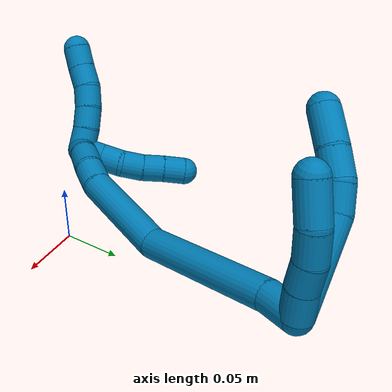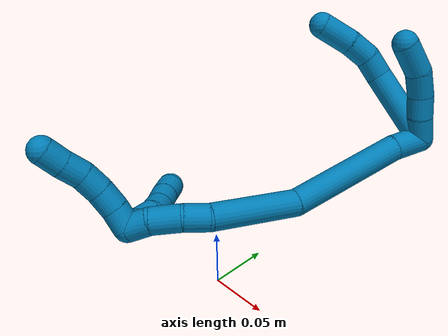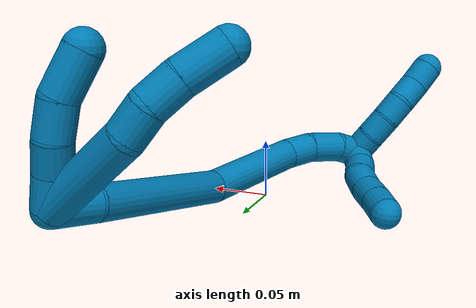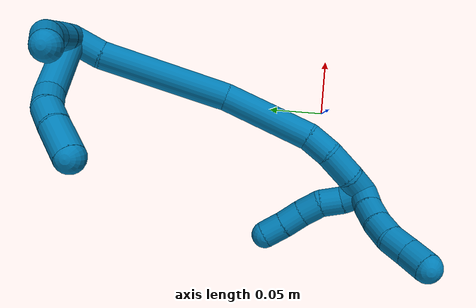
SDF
<sdf version="1.7">
 <world name="default">
  <model name="9">
   <static>0</static>
   <link name="9">
    <collision name="collision-cylinder-e_1_2_8">
     <pose>-0.023129 -0.001311 0.028316 0.046261 -0.684394 -0.016481</pose>
     <geometry><cylinder><radius>0.0125</radius><length>0.07317</length></cylinder></geometry>
     <surface>
      <friction><ode><mu>1.16</mu><mu2>1.16</mu2><slip1>0</slip1><slip2>0</slip2></ode></friction>
      <contact><ode><kp>1e+06</kp><kd>1</kd><max_vel>0</max_vel><min_depth>0.001</min_depth></ode></contact>
     </surface>
    </collision>
    <visual name="visual-cylinder-e_1_2_8">
     <pose>-0.023129 -0.001311 0.028316 0.046261 -0.684394 -0.016481</pose>
     <geometry><cylinder><radius>0.0125</radius><length>0.07317</length></cylinder></geometry>
     <material><ambient>0 0.490196 0.709804 1</ambient></material>
    </visual>
    <collision name="collision-cylinder-e_2_8_9">
     <pose>-0.050851 -0.005286 0.066177 0.272198 -0.433998 -0.060367</pose>
     <geometry><cylinder><radius>0.0125</radius><length>0.021846</length></cylinder></geometry>
     <surface>
      <friction><ode><mu>1.16</mu><mu2>1.16</mu2><slip1>0</slip1><slip2>0</slip2></ode></friction>
      <contact><ode><kp>1e+06</kp><kd>1</kd><max_vel>0</max_vel><min_depth>0.001</min_depth></ode></contact>
     </surface>
    </collision>
    <visual name="visual-cylinder-e_2_8_9">
     <pose>-0.050851 -0.005286 0.066177 0.272198 -0.433998 -0.060367</pose>
     <geometry><cylinder><radius>0.0125</radius><length>0.021846</length></cylinder></geometry>
     <material><ambient>0 0.490196 0.709804 1</ambient></material>
    </visual>
    <collision name="collision-cylinder-e_3_9_10">
     <pose>-0.060948 -0.01393 0.083855 0.633978 -0.499183 -0.166857</pose>
     <geometry><cylinder><radius>0.0125</radius><length>0.022994</length></cylinder></geometry>
     <surface>
      <friction><ode><mu>1.16</mu><mu2>1.16</mu2><slip1>0</slip1><slip2>0</slip2></ode></friction>
      <contact><ode><kp>1e+06</kp><kd>1</kd><max_vel>0</max_vel><min_depth>0.001</min_depth></ode></contact>
     </surface>
    </collision>
    <visual name="visual-cylinder-e_3_9_10">
     <pose>-0.060948 -0.01393 0.083855 0.633978 -0.499183 -0.166857</pose>
     <geometry><cylinder><radius>0.0125</radius><length>0.022994</length></cylinder></geometry>
     <material><ambient>0 0.490196 0.709804 1</ambient></material>
    </visual>
    <collision name="collision-cylinder-e_4_10_6">
     <pose>-0.075382 -0.029021 0.101636 0.756802 -0.592317 -0.241437</pose>
     <geometry><cylinder><radius>0.0125</radius><length>0.031989</length></cylinder></geometry>
     <surface>
      <friction><ode><mu>1.16</mu><mu2>1.16</mu2><slip1>0</slip1><slip2>0</slip2></ode></friction>
      <contact><ode><kp>1e+06</kp><kd>1</kd><max_vel>0</max_vel><min_depth>0.001</min_depth></ode></contact>
     </surface>
    </collision>
    <visual name="visual-cylinder-e_4_10_6">
     <pose>-0.075382 -0.029021 0.101636 0.756802 -0.592317 -0.241437</pose>
     <geometry><cylinder><radius>0.0125</radius><length>0.031989</length></cylinder></geometry>
     <material><ambient>0 0.490196 0.709804 1</ambient></material>
    </visual>
    <collision name="collision-cylinder-e_1_2_11">
     <pose>-5.9e-05 -9.4e-05 0.011552 0.008116 -0.005114 -2.1e-05</pose>
     <geometry><cylinder><radius>0.0125</radius><length>0.023104</length></cylinder></geometry>
     <surface>
      <friction><ode><mu>1.16</mu><mu2>1.16</mu2><slip1>0</slip1><slip2>0</slip2></ode></friction>
      <contact><ode><kp>1e+06</kp><kd>1</kd><max_vel>0</max_vel><min_depth>0.001</min_depth></ode></contact>
     </surface>
    </collision>
    <visual name="visual-cylinder-e_1_2_11">
     <pose>-5.9e-05 -9.4e-05 0.011552 0.008116 -0.005114 -2.1e-05</pose>
     <geometry><cylinder><radius>0.0125</radius><length>0.023104</length></cylinder></geometry>
     <material><ambient>0 0.490196 0.709804 1</ambient></material>
    </visual>
    <collision name="collision-cylinder-e_2_11_12">
     <pose>-0.000408 0.000787 0.033741 -0.091384 -0.027141 0.001241</pose>
     <geometry><cylinder><radius>0.0125</radius><length>0.021373</length></cylinder></geometry>
     <surface>
      <friction><ode><mu>1.16</mu><mu2>1.16</mu2><slip1>0</slip1><slip2>0</slip2></ode></friction>
      <contact><ode><kp>1e+06</kp><kd>1</kd><max_vel>0</max_vel><min_depth>0.001</min_depth></ode></contact>
     </surface>
    </collision>
    <visual name="visual-cylinder-e_2_11_12">
     <pose>-0.000408 0.000787 0.033741 -0.091384 -0.027141 0.001241</pose>
     <geometry><cylinder><radius>0.0125</radius><length>0.021373</length></cylinder></geometry>
     <material><ambient>0 0.490196 0.709804 1</ambient></material>
    </visual>
    <collision name="collision-cylinder-e_3_12_13">
     <pose>-0.001009 0.000486 0.056463 0.105242 -0.025544 -0.001345</pose>
     <geometry><cylinder><radius>0.0125</radius><length>0.02431</length></cylinder></geometry>
     <surface>
      <friction><ode><mu>1.16</mu><mu2>1.16</mu2><slip1>0</slip1><slip2>0</slip2></ode></friction>
      <contact><ode><kp>1e+06</kp><kd>1</kd><max_vel>0</max_vel><min_depth>0.001</min_depth></ode></contact>
     </surface>
    </collision>
    <visual name="visual-cylinder-e_3_12_13">
     <pose>-0.001009 0.000486 0.056463 0.105242 -0.025544 -0.001345</pose>
     <geometry><cylinder><radius>0.0125</radius><length>0.02431</length></cylinder></geometry>
     <material><ambient>0 0.490196 0.709804 1</ambient></material>
    </visual>
    <collision name="collision-cylinder-e_4_13_5">
     <pose>-0.004934 -0.005722 0.082905 0.330852 -0.233775 -0.039203</pose>
     <geometry><cylinder><radius>0.0125</radius><length>0.031213</length></cylinder></geometry>
     <surface>
      <friction><ode><mu>1.16</mu><mu2>1.16</mu2><slip1>0</slip1><slip2>0</slip2></ode></friction>
      <contact><ode><kp>1e+06</kp><kd>1</kd><max_vel>0</max_vel><min_depth>0.001</min_depth></ode></contact>
     </surface>
    </collision>
    <visual name="visual-cylinder-e_4_13_5">
     <pose>-0.004934 -0.005722 0.082905 0.330852 -0.233775 -0.039203</pose>
     <geometry><cylinder><radius>0.0125</radius><length>0.031213</length></cylinder></geometry>
     <material><ambient>0 0.490196 0.709804 1</ambient></material>
    </visual>
    <collision name="collision-cylinder-e_1_2_14">
     <pose>-0.005616 -0.013367 -0.001244 1.66362 -0.396194 -0.433643</pose>
     <geometry><cylinder><radius>0.0125</radius><length>0.029104</length></cylinder></geometry>
     <surface>
      <friction><ode><mu>1.16</mu><mu2>1.16</mu2><slip1>0</slip1><slip2>0</slip2></ode></friction>
      <contact><ode><kp>1e+06</kp><kd>1</kd><max_vel>0</max_vel><min_depth>0.001</min_depth></ode></contact>
     </surface>
    </collision>
    <visual name="visual-cylinder-e_1_2_14">
     <pose>-0.005616 -0.013367 -0.001244 1.66362 -0.396194 -0.433643</pose>
     <geometry><cylinder><radius>0.0125</radius><length>0.029104</length></cylinder></geometry>
     <material><ambient>0 0.490196 0.709804 1</ambient></material>
    </visual>
    <collision name="collision-cylinder-e_2_14_15">
     <pose>-0.023287 -0.082694 -0.011314 1.72722 -0.209673 -0.245001</pose>
     <geometry><cylinder><radius>0.0125</radius><length>0.11584</length></cylinder></geometry>
     <surface>
      <friction><ode><mu>1.16</mu><mu2>1.16</mu2><slip1>0</slip1><slip2>0</slip2></ode></friction>
      <contact><ode><kp>1e+06</kp><kd>1</kd><max_vel>0</max_vel><min_depth>0.001</min_depth></ode></contact>
     </surface>
    </collision>
    <visual name="visual-cylinder-e_2_14_15">
     <pose>-0.023287 -0.082694 -0.011314 1.72722 -0.209673 -0.245001</pose>
     <geometry><cylinder><radius>0.0125</radius><length>0.11584</length></cylinder></geometry>
     <material><ambient>0 0.490196 0.709804 1</ambient></material>
    </visual>
    <collision name="collision-cylinder-e_3_15_16">
     <pose>-0.048135 -0.177587 -0.013872 1.41118 -0.313695 -0.267834</pose>
     <geometry><cylinder><radius>0.0125</radius><length>0.082915</length></cylinder></geometry>
     <surface>
      <friction><ode><mu>1.16</mu><mu2>1.16</mu2><slip1>0</slip1><slip2>0</slip2></ode></friction>
      <contact><ode><kp>1e+06</kp><kd>1</kd><max_vel>0</max_vel><min_depth>0.001</min_depth></ode></contact>
     </surface>
    </collision>
    <visual name="visual-cylinder-e_3_15_16">
     <pose>-0.048135 -0.177587 -0.013872 1.41118 -0.313695 -0.267834</pose>
     <geometry><cylinder><radius>0.0125</radius><length>0.082915</length></cylinder></geometry>
     <material><ambient>0 0.490196 0.709804 1</ambient></material>
    </visual>
    <collision name="collision-cylinder-e_4_16_17">
     <pose>-0.067167 -0.226199 -0.005469 1.35375 -0.56177 -0.455596</pose>
     <geometry><cylinder><radius>0.0125</radius><length>0.023423</length></cylinder></geometry>
     <surface>
      <friction><ode><mu>1.16</mu><mu2>1.16</mu2><slip1>0</slip1><slip2>0</slip2></ode></friction>
      <contact><ode><kp>1e+06</kp><kd>1</kd><max_vel>0</max_vel><min_depth>0.001</min_depth></ode></contact>
     </surface>
    </collision>
    <visual name="visual-cylinder-e_4_16_17">
     <pose>-0.067167 -0.226199 -0.005469 1.35375 -0.56177 -0.455596</pose>
     <geometry><cylinder><radius>0.0125</radius><length>0.023423</length></cylinder></geometry>
     <material><ambient>0 0.490196 0.709804 1</ambient></material>
    </visual>
    <collision name="collision-cylinder-e_5_17_18">
     <pose>-0.08254 -0.2465 -0.003262 1.56391 -0.710278 -0.705797</pose>
     <geometry><cylinder><radius>0.0125</radius><length>0.02802</length></cylinder></geometry>
     <surface>
      <friction><ode><mu>1.16</mu><mu2>1.16</mu2><slip1>0</slip1><slip2>0</slip2></ode></friction>
      <contact><ode><kp>1e+06</kp><kd>1</kd><max_vel>0</max_vel><min_depth>0.001</min_depth></ode></contact>
     </surface>
    </collision>
    <visual name="visual-cylinder-e_5_17_18">
     <pose>-0.08254 -0.2465 -0.003262 1.56391 -0.710278 -0.705797</pose>
     <geometry><cylinder><radius>0.0125</radius><length>0.02802</length></cylinder></geometry>
     <material><ambient>0 0.490196 0.709804 1</ambient></material>
    </visual>
    <collision name="collision-cylinder-e_6_18_1">
     <pose>-0.09853 -0.264421 -0.005801 1.91451 -0.723997 -0.986782</pose>
     <geometry><cylinder><radius>0.0125</radius><length>0.020698</length></cylinder></geometry>
     <surface>
      <friction><ode><mu>1.16</mu><mu2>1.16</mu2><slip1>0</slip1><slip2>0</slip2></ode></friction>
      <contact><ode><kp>1e+06</kp><kd>1</kd><max_vel>0</max_vel><min_depth>0.001</min_depth></ode></contact>
     </surface>
    </collision>
    <visual name="visual-cylinder-e_6_18_1">
     <pose>-0.09853 -0.264421 -0.005801 1.91451 -0.723997 -0.986782</pose>
     <geometry><cylinder><radius>0.0125</radius><length>0.020698</length></cylinder></geometry>
     <material><ambient>0 0.490196 0.709804 1</ambient></material>
    </visual>
    <collision name="collision-cylinder-e_1_1_19">
     <pose>-0.110414 -0.263515 -0.011129 -1.89036 -0.526885 0.714631</pose>
     <geometry><cylinder><radius>0.0125</radius><length>0.02</length></cylinder></geometry>
     <surface>
      <friction><ode><mu>1.16</mu><mu2>1.16</mu2><slip1>0</slip1><slip2>0</slip2></ode></friction>
      <contact><ode><kp>1e+06</kp><kd>1</kd><max_vel>0</max_vel><min_depth>0.001</min_depth></ode></contact>
     </surface>
    </collision>
    <visual name="visual-cylinder-e_1_1_19">
     <pose>-0.110414 -0.263515 -0.011129 -1.89036 -0.526885 0.714631</pose>
     <geometry><cylinder><radius>0.0125</radius><length>0.02</length></cylinder></geometry>
     <material><ambient>0 0.490196 0.709804 1</ambient></material>
    </visual>
    <collision name="collision-cylinder-e_2_19_20">
     <pose>-0.118405 -0.245838 -0.015086 -1.70108 -0.300762 0.341977</pose>
     <geometry><cylinder><radius>0.0125</radius><length>0.02</length></cylinder></geometry>
     <surface>
      <friction><ode><mu>1.16</mu><mu2>1.16</mu2><slip1>0</slip1><slip2>0</slip2></ode></friction>
      <contact><ode><kp>1e+06</kp><kd>1</kd><max_vel>0</max_vel><min_depth>0.001</min_depth></ode></contact>
     </surface>
    </collision>
    <visual name="visual-cylinder-e_2_19_20">
     <pose>-0.118405 -0.245838 -0.015086 -1.70108 -0.300762 0.341977</pose>
     <geometry><cylinder><radius>0.0125</radius><length>0.02</length></cylinder></geometry>
     <material><ambient>0 0.490196 0.709804 1</ambient></material>
    </visual>
    <collision name="collision-cylinder-e_3_20_21">
     <pose>-0.127358 -0.228536 -0.017993 -1.78048 -0.642314 0.779773</pose>
     <geometry><cylinder><radius>0.0125</radius><length>0.02</length></cylinder></geometry>
     <surface>
      <friction><ode><mu>1.16</mu><mu2>1.16</mu2><slip1>0</slip1><slip2>0</slip2></ode></friction>
      <contact><ode><kp>1e+06</kp><kd>1</kd><max_vel>0</max_vel><min_depth>0.001</min_depth></ode></contact>
     </surface>
    </collision>
    <visual name="visual-cylinder-e_3_20_21">
     <pose>-0.127358 -0.228536 -0.017993 -1.78048 -0.642314 0.779773</pose>
     <geometry><cylinder><radius>0.0125</radius><length>0.02</length></cylinder></geometry>
     <material><ambient>0 0.490196 0.709804 1</ambient></material>
    </visual>
    <collision name="collision-cylinder-e_4_21_22">
     <pose>-0.139877 -0.213141 -0.020072 -1.62527 -0.711368 0.747685</pose>
     <geometry><cylinder><radius>0.0125</radius><length>0.02</length></cylinder></geometry>
     <surface>
      <friction><ode><mu>1.16</mu><mu2>1.16</mu2><slip1>0</slip1><slip2>0</slip2></ode></friction>
      <contact><ode><kp>1e+06</kp><kd>1</kd><max_vel>0</max_vel><min_depth>0.001</min_depth></ode></contact>
     </surface>
    </collision>
    <visual name="visual-cylinder-e_4_21_22">
     <pose>-0.139877 -0.213141 -0.020072 -1.62527 -0.711368 0.747685</pose>
     <geometry><cylinder><radius>0.0125</radius><length>0.02</length></cylinder></geometry>
     <material><ambient>0 0.490196 0.709804 1</ambient></material>
    </visual>
    <collision name="collision-cylinder-e_5_22_4">
     <pose>-0.152375 -0.197577 -0.02108 -1.64508 -0.639664 0.685384</pose>
     <geometry><cylinder><radius>0.0125</radius><length>0.02</length></cylinder></geometry>
     <surface>
      <friction><ode><mu>1.16</mu><mu2>1.16</mu2><slip1>0</slip1><slip2>0</slip2></ode></friction>
      <contact><ode><kp>1e+06</kp><kd>1</kd><max_vel>0</max_vel><min_depth>0.001</min_depth></ode></contact>
     </surface>
    </collision>
    <visual name="visual-cylinder-e_5_22_4">
     <pose>-0.152375 -0.197577 -0.02108 -1.64508 -0.639664 0.685384</pose>
     <geometry><cylinder><radius>0.0125</radius><length>0.02</length></cylinder></geometry>
     <material><ambient>0 0.490196 0.709804 1</ambient></material>
    </visual>
    <collision name="collision-cylinder-e_1_1_23">
     <pose>-0.110167 -0.273186 0.000245 0.167583 -0.49861 -0.042761</pose>
     <geometry><cylinder><radius>0.0125</radius><length>0.02</length></cylinder></geometry>
     <surface>
      <friction><ode><mu>1.16</mu><mu2>1.16</mu2><slip1>0</slip1><slip2>0</slip2></ode></friction>
      <contact><ode><kp>1e+06</kp><kd>1</kd><max_vel>0</max_vel><min_depth>0.001</min_depth></ode></contact>
     </surface>
    </collision>
    <visual name="visual-cylinder-e_1_1_23">
     <pose>-0.110167 -0.273186 0.000245 0.167583 -0.49861 -0.042761</pose>
     <geometry><cylinder><radius>0.0125</radius><length>0.02</length></cylinder></geometry>
     <material><ambient>0 0.490196 0.709804 1</ambient></material>
    </visual>
    <collision name="collision-cylinder-e_2_23_24">
     <pose>-0.119475 -0.277488 0.017359 0.323753 -0.469659 -0.0781</pose>
     <geometry><cylinder><radius>0.0125</radius><length>0.02</length></cylinder></geometry>
     <surface>
      <friction><ode><mu>1.16</mu><mu2>1.16</mu2><slip1>0</slip1><slip2>0</slip2></ode></friction>
      <contact><ode><kp>1e+06</kp><kd>1</kd><max_vel>0</max_vel><min_depth>0.001</min_depth></ode></contact>
     </surface>
    </collision>
    <visual name="visual-cylinder-e_2_23_24">
     <pose>-0.119475 -0.277488 0.017359 0.323753 -0.469659 -0.0781</pose>
     <geometry><cylinder><radius>0.0125</radius><length>0.02</length></cylinder></geometry>
     <material><ambient>0 0.490196 0.709804 1</ambient></material>
    </visual>
    <collision name="collision-cylinder-e_3_24_25">
     <pose>-0.127917 -0.284619 0.033951 0.485595 -0.40233 -0.100931</pose>
     <geometry><cylinder><radius>0.0125</radius><length>0.02</length></cylinder></geometry>
     <surface>
      <friction><ode><mu>1.16</mu><mu2>1.16</mu2><slip1>0</slip1><slip2>0</slip2></ode></friction>
      <contact><ode><kp>1e+06</kp><kd>1</kd><max_vel>0</max_vel><min_depth>0.001</min_depth></ode></contact>
     </surface>
    </collision>
    <visual name="visual-cylinder-e_3_24_25">
     <pose>-0.127917 -0.284619 0.033951 0.485595 -0.40233 -0.100931</pose>
     <geometry><cylinder><radius>0.0125</radius><length>0.02</length></cylinder></geometry>
     <material><ambient>0 0.490196 0.709804 1</ambient></material>
    </visual>
    <collision name="collision-cylinder-e_4_25_26">
     <pose>-0.134993 -0.295264 0.049137 0.733382 -0.32158 -0.124421</pose>
     <geometry><cylinder><radius>0.0125</radius><length>0.02</length></cylinder></geometry>
     <surface>
      <friction><ode><mu>1.16</mu><mu2>1.16</mu2><slip1>0</slip1><slip2>0</slip2></ode></friction>
      <contact><ode><kp>1e+06</kp><kd>1</kd><max_vel>0</max_vel><min_depth>0.001</min_depth></ode></contact>
     </surface>
    </collision>
    <visual name="visual-cylinder-e_4_25_26">
     <pose>-0.134993 -0.295264 0.049137 0.733382 -0.32158 -0.124421</pose>
     <geometry><cylinder><radius>0.0125</radius><length>0.02</length></cylinder></geometry>
     <material><ambient>0 0.490196 0.709804 1</ambient></material>
    </visual>
    <collision name="collision-cylinder-e_5_26_3">
     <pose>-0.141149 -0.307367 0.063797 0.647097 -0.304187 -0.102707</pose>
     <geometry><cylinder><radius>0.0125</radius><length>0.02</length></cylinder></geometry>
     <surface>
      <friction><ode><mu>1.16</mu><mu2>1.16</mu2><slip1>0</slip1><slip2>0</slip2></ode></friction>
      <contact><ode><kp>1e+06</kp><kd>1</kd><max_vel>0</max_vel><min_depth>0.001</min_depth></ode></contact>
     </surface>
    </collision>
    <visual name="visual-cylinder-e_5_26_3">
     <pose>-0.141149 -0.307367 0.063797 0.647097 -0.304187 -0.102707</pose>
     <geometry><cylinder><radius>0.0125</radius><length>0.02</length></cylinder></geometry>
     <material><ambient>0 0.490196 0.709804 1</ambient></material>
    </visual>
    <collision name="collision-sphere-3">
     <pose>-0.144144 -0.313119 0.071409 0 -0 0</pose>
     <geometry><sphere><radius>0.0125</radius></sphere></geometry>
     <surface>
      <friction><ode><mu>1.16</mu><mu2>1.16</mu2><slip1>0</slip1><slip2>0</slip2></ode></friction>
      <contact><ode><kp>1e+06</kp><kd>1</kd><max_vel>0</max_vel><min_depth>0.001</min_depth></ode></contact>
     </surface>
    </collision>
    <visual name="visual-sphere-3">
     <pose>-0.144144 -0.313119 0.071409 0 -0 0</pose>
     <geometry><sphere><radius>0.0125</radius></sphere></geometry>
     <material><ambient>0 0.490196 0.709804 1</ambient></material>
    </visual>
    <collision name="collision-sphere-26">
     <pose>-0.138154 -0.301615 0.056185 0 -0 0</pose>
     <geometry><sphere><radius>0.0125</radius></sphere></geometry>
     <surface>
      <friction><ode><mu>1.16</mu><mu2>1.16</mu2><slip1>0</slip1><slip2>0</slip2></ode></friction>
      <contact><ode><kp>1e+06</kp><kd>1</kd><max_vel>0</max_vel><min_depth>0.001</min_depth></ode></contact>
     </surface>
    </collision>
    <visual name="visual-sphere-26">
     <pose>-0.138154 -0.301615 0.056185 0 -0 0</pose>
     <geometry><sphere><radius>0.0125</radius></sphere></geometry>
     <material><ambient>0 0.490196 0.709804 1</ambient></material>
    </visual>
    <collision name="collision-sphere-25">
     <pose>-0.131832 -0.288914 0.042088 0 -0 0</pose>
     <geometry><sphere><radius>0.0125</radius></sphere></geometry>
     <surface>
      <friction><ode><mu>1.16</mu><mu2>1.16</mu2><slip1>0</slip1><slip2>0</slip2></ode></friction>
      <contact><ode><kp>1e+06</kp><kd>1</kd><max_vel>0</max_vel><min_depth>0.001</min_depth></ode></contact>
     </surface>
    </collision>
    <visual name="visual-sphere-25">
     <pose>-0.131832 -0.288914 0.042088 0 -0 0</pose>
     <geometry><sphere><radius>0.0125</radius></sphere></geometry>
     <material><ambient>0 0.490196 0.709804 1</ambient></material>
    </visual>
    <collision name="collision-sphere-24">
     <pose>-0.124001 -0.280324 0.025813 0 -0 0</pose>
     <geometry><sphere><radius>0.0125</radius></sphere></geometry>
     <surface>
      <friction><ode><mu>1.16</mu><mu2>1.16</mu2><slip1>0</slip1><slip2>0</slip2></ode></friction>
      <contact><ode><kp>1e+06</kp><kd>1</kd><max_vel>0</max_vel><min_depth>0.001</min_depth></ode></contact>
     </surface>
    </collision>
    <visual name="visual-sphere-24">
     <pose>-0.124001 -0.280324 0.025813 0 -0 0</pose>
     <geometry><sphere><radius>0.0125</radius></sphere></geometry>
     <material><ambient>0 0.490196 0.709804 1</ambient></material>
    </visual>
    <collision name="collision-sphere-23">
     <pose>-0.114949 -0.274651 0.008905 0 -0 0</pose>
     <geometry><sphere><radius>0.0125</radius></sphere></geometry>
     <surface>
      <friction><ode><mu>1.16</mu><mu2>1.16</mu2><slip1>0</slip1><slip2>0</slip2></ode></friction>
      <contact><ode><kp>1e+06</kp><kd>1</kd><max_vel>0</max_vel><min_depth>0.001</min_depth></ode></contact>
     </surface>
    </collision>
    <visual name="visual-sphere-23">
     <pose>-0.114949 -0.274651 0.008905 0 -0 0</pose>
     <geometry><sphere><radius>0.0125</radius></sphere></geometry>
     <material><ambient>0 0.490196 0.709804 1</ambient></material>
    </visual>
    <collision name="collision-sphere-4">
     <pose>-0.158344 -0.189576 -0.021676 0 -0 0</pose>
     <geometry><sphere><radius>0.0125</radius></sphere></geometry>
     <surface>
      <friction><ode><mu>1.16</mu><mu2>1.16</mu2><slip1>0</slip1><slip2>0</slip2></ode></friction>
      <contact><ode><kp>1e+06</kp><kd>1</kd><max_vel>0</max_vel><min_depth>0.001</min_depth></ode></contact>
     </surface>
    </collision>
    <visual name="visual-sphere-4">
     <pose>-0.158344 -0.189576 -0.021676 0 -0 0</pose>
     <geometry><sphere><radius>0.0125</radius></sphere></geometry>
     <material><ambient>0 0.490196 0.709804 1</ambient></material>
    </visual>
    <collision name="collision-sphere-22">
     <pose>-0.146406 -0.205578 -0.020485 0 -0 0</pose>
     <geometry><sphere><radius>0.0125</radius></sphere></geometry>
     <surface>
      <friction><ode><mu>1.16</mu><mu2>1.16</mu2><slip1>0</slip1><slip2>0</slip2></ode></friction>
      <contact><ode><kp>1e+06</kp><kd>1</kd><max_vel>0</max_vel><min_depth>0.001</min_depth></ode></contact>
     </surface>
    </collision>
    <visual name="visual-sphere-22">
     <pose>-0.146406 -0.205578 -0.020485 0 -0 0</pose>
     <geometry><sphere><radius>0.0125</radius></sphere></geometry>
     <material><ambient>0 0.490196 0.709804 1</ambient></material>
    </visual>
    <collision name="collision-sphere-21">
     <pose>-0.133348 -0.220705 -0.01966 0 -0 0</pose>
     <geometry><sphere><radius>0.0125</radius></sphere></geometry>
     <surface>
      <friction><ode><mu>1.16</mu><mu2>1.16</mu2><slip1>0</slip1><slip2>0</slip2></ode></friction>
      <contact><ode><kp>1e+06</kp><kd>1</kd><max_vel>0</max_vel><min_depth>0.001</min_depth></ode></contact>
     </surface>
    </collision>
    <visual name="visual-sphere-21">
     <pose>-0.133348 -0.220705 -0.01966 0 -0 0</pose>
     <geometry><sphere><radius>0.0125</radius></sphere></geometry>
     <material><ambient>0 0.490196 0.709804 1</ambient></material>
    </visual>
    <collision name="collision-sphere-20">
     <pose>-0.121367 -0.236368 -0.016327 0 -0 0</pose>
     <geometry><sphere><radius>0.0125</radius></sphere></geometry>
     <surface>
      <friction><ode><mu>1.16</mu><mu2>1.16</mu2><slip1>0</slip1><slip2>0</slip2></ode></friction>
      <contact><ode><kp>1e+06</kp><kd>1</kd><max_vel>0</max_vel><min_depth>0.001</min_depth></ode></contact>
     </surface>
    </collision>
    <visual name="visual-sphere-20">
     <pose>-0.121367 -0.236368 -0.016327 0 -0 0</pose>
     <geometry><sphere><radius>0.0125</radius></sphere></geometry>
     <material><ambient>0 0.490196 0.709804 1</ambient></material>
    </visual>
    <collision name="collision-sphere-11">
     <pose>-0.000118 -0.000188 0.023103 0 -0 0</pose>
     <geometry><sphere><radius>0.0125</radius></sphere></geometry>
     <surface>
      <friction><ode><mu>1.16</mu><mu2>1.16</mu2><slip1>0</slip1><slip2>0</slip2></ode></friction>
      <contact><ode><kp>1e+06</kp><kd>1</kd><max_vel>0</max_vel><min_depth>0.001</min_depth></ode></contact>
     </surface>
    </collision>
    <visual name="visual-sphere-11">
     <pose>-0.000118 -0.000188 0.023103 0 -0 0</pose>
     <geometry><sphere><radius>0.0125</radius></sphere></geometry>
     <material><ambient>0 0.490196 0.709804 1</ambient></material>
    </visual>
    <collision name="collision-sphere-6">
     <pose>-0.084311 -0.038132 0.111284 0 -0 0</pose>
     <geometry><sphere><radius>0.0125</radius></sphere></geometry>
     <surface>
      <friction><ode><mu>1.16</mu><mu2>1.16</mu2><slip1>0</slip1><slip2>0</slip2></ode></friction>
      <contact><ode><kp>1e+06</kp><kd>1</kd><max_vel>0</max_vel><min_depth>0.001</min_depth></ode></contact>
     </surface>
    </collision>
    <visual name="visual-sphere-6">
     <pose>-0.084311 -0.038132 0.111284 0 -0 0</pose>
     <geometry><sphere><radius>0.0125</radius></sphere></geometry>
     <material><ambient>0 0.490196 0.709804 1</ambient></material>
    </visual>
    <collision name="collision-sphere-10">
     <pose>-0.066452 -0.019909 0.091988 0 -0 0</pose>
     <geometry><sphere><radius>0.0125</radius></sphere></geometry>
     <surface>
      <friction><ode><mu>1.16</mu><mu2>1.16</mu2><slip1>0</slip1><slip2>0</slip2></ode></friction>
      <contact><ode><kp>1e+06</kp><kd>1</kd><max_vel>0</max_vel><min_depth>0.001</min_depth></ode></contact>
     </surface>
    </collision>
    <visual name="visual-sphere-10">
     <pose>-0.066452 -0.019909 0.091988 0 -0 0</pose>
     <geometry><sphere><radius>0.0125</radius></sphere></geometry>
     <material><ambient>0 0.490196 0.709804 1</ambient></material>
    </visual>
    <collision name="collision-sphere-9">
     <pose>-0.055445 -0.007951 0.075723 0 -0 0</pose>
     <geometry><sphere><radius>0.0125</radius></sphere></geometry>
     <surface>
      <friction><ode><mu>1.16</mu><mu2>1.16</mu2><slip1>0</slip1><slip2>0</slip2></ode></friction>
      <contact><ode><kp>1e+06</kp><kd>1</kd><max_vel>0</max_vel><min_depth>0.001</min_depth></ode></contact>
     </surface>
    </collision>
    <visual name="visual-sphere-9">
     <pose>-0.055445 -0.007951 0.075723 0 -0 0</pose>
     <geometry><sphere><radius>0.0125</radius></sphere></geometry>
     <material><ambient>0 0.490196 0.709804 1</ambient></material>
    </visual>
    <collision name="collision-sphere-2">
     <geometry><sphere><radius>0.0125</radius></sphere></geometry>
     <surface>
      <friction><ode><mu>1.16</mu><mu2>1.16</mu2><slip1>0</slip1><slip2>0</slip2></ode></friction>
      <contact><ode><kp>1e+06</kp><kd>1</kd><max_vel>0</max_vel><min_depth>0.001</min_depth></ode></contact>
     </surface>
    </collision>
    <visual name="visual-sphere-2">
     <geometry><sphere><radius>0.0125</radius></sphere></geometry>
     <material><ambient>0 0.490196 0.709804 1</ambient></material>
    </visual>
    <collision name="collision-sphere-19">
     <pose>-0.115442 -0.255309 -0.013845 0 -0 0</pose>
     <geometry><sphere><radius>0.0125</radius></sphere></geometry>
     <surface>
      <friction><ode><mu>1.16</mu><mu2>1.16</mu2><slip1>0</slip1><slip2>0</slip2></ode></friction>
      <contact><ode><kp>1e+06</kp><kd>1</kd><max_vel>0</max_vel><min_depth>0.001</min_depth></ode></contact>
     </surface>
    </collision>
    <visual name="visual-sphere-19">
     <pose>-0.115442 -0.255309 -0.013845 0 -0 0</pose>
     <geometry><sphere><radius>0.0125</radius></sphere></geometry>
     <material><ambient>0 0.490196 0.709804 1</ambient></material>
    </visual>
    <collision name="collision-sphere-8">
     <pose>-0.046258 -0.002622 0.056631 0 -0 0</pose>
     <geometry><sphere><radius>0.0125</radius></sphere></geometry>
     <surface>
      <friction><ode><mu>1.16</mu><mu2>1.16</mu2><slip1>0</slip1><slip2>0</slip2></ode></friction>
      <contact><ode><kp>1e+06</kp><kd>1</kd><max_vel>0</max_vel><min_depth>0.001</min_depth></ode></contact>
     </surface>
    </collision>
    <visual name="visual-sphere-8">
     <pose>-0.046258 -0.002622 0.056631 0 -0 0</pose>
     <geometry><sphere><radius>0.0125</radius></sphere></geometry>
     <material><ambient>0 0.490196 0.709804 1</ambient></material>
    </visual>
    <collision name="collision-sphere-12">
     <pose>-0.000698 0.001762 0.044379 0 -0 0</pose>
     <geometry><sphere><radius>0.0125</radius></sphere></geometry>
     <surface>
      <friction><ode><mu>1.16</mu><mu2>1.16</mu2><slip1>0</slip1><slip2>0</slip2></ode></friction>
      <contact><ode><kp>1e+06</kp><kd>1</kd><max_vel>0</max_vel><min_depth>0.001</min_depth></ode></contact>
     </surface>
    </collision>
    <visual name="visual-sphere-12">
     <pose>-0.000698 0.001762 0.044379 0 -0 0</pose>
     <geometry><sphere><radius>0.0125</radius></sphere></geometry>
     <material><ambient>0 0.490196 0.709804 1</ambient></material>
    </visual>
    <collision name="collision-sphere-13">
     <pose>-0.001319 -0.000791 0.068547 0 -0 0</pose>
     <geometry><sphere><radius>0.0125</radius></sphere></geometry>
     <surface>
      <friction><ode><mu>1.16</mu><mu2>1.16</mu2><slip1>0</slip1><slip2>0</slip2></ode></friction>
      <contact><ode><kp>1e+06</kp><kd>1</kd><max_vel>0</max_vel><min_depth>0.001</min_depth></ode></contact>
     </surface>
    </collision>
    <visual name="visual-sphere-13">
     <pose>-0.001319 -0.000791 0.068547 0 -0 0</pose>
     <geometry><sphere><radius>0.0125</radius></sphere></geometry>
     <material><ambient>0 0.490196 0.709804 1</ambient></material>
    </visual>
    <collision name="collision-sphere-5">
     <pose>-0.00855 -0.010654 0.097264 0 -0 0</pose>
     <geometry><sphere><radius>0.0125</radius></sphere></geometry>
     <surface>
      <friction><ode><mu>1.16</mu><mu2>1.16</mu2><slip1>0</slip1><slip2>0</slip2></ode></friction>
      <contact><ode><kp>1e+06</kp><kd>1</kd><max_vel>0</max_vel><min_depth>0.001</min_depth></ode></contact>
     </surface>
    </collision>
    <visual name="visual-sphere-5">
     <pose>-0.00855 -0.010654 0.097264 0 -0 0</pose>
     <geometry><sphere><radius>0.0125</radius></sphere></geometry>
     <material><ambient>0 0.490196 0.709804 1</ambient></material>
    </visual>
    <collision name="collision-sphere-14">
     <pose>-0.011232 -0.026734 -0.002489 0 -0 0</pose>
     <geometry><sphere><radius>0.0125</radius></sphere></geometry>
     <surface>
      <friction><ode><mu>1.16</mu><mu2>1.16</mu2><slip1>0</slip1><slip2>0</slip2></ode></friction>
      <contact><ode><kp>1e+06</kp><kd>1</kd><max_vel>0</max_vel><min_depth>0.001</min_depth></ode></contact>
     </surface>
    </collision>
    <visual name="visual-sphere-14">
     <pose>-0.011232 -0.026734 -0.002489 0 -0 0</pose>
     <geometry><sphere><radius>0.0125</radius></sphere></geometry>
     <material><ambient>0 0.490196 0.709804 1</ambient></material>
    </visual>
    <collision name="collision-sphere-15">
     <pose>-0.035343 -0.138654 -0.020139 0 -0 0</pose>
     <geometry><sphere><radius>0.0125</radius></sphere></geometry>
     <surface>
      <friction><ode><mu>1.16</mu><mu2>1.16</mu2><slip1>0</slip1><slip2>0</slip2></ode></friction>
      <contact><ode><kp>1e+06</kp><kd>1</kd><max_vel>0</max_vel><min_depth>0.001</min_depth></ode></contact>
     </surface>
    </collision>
    <visual name="visual-sphere-15">
     <pose>-0.035343 -0.138654 -0.020139 0 -0 0</pose>
     <geometry><sphere><radius>0.0125</radius></sphere></geometry>
     <material><ambient>0 0.490196 0.709804 1</ambient></material>
    </visual>
    <collision name="collision-sphere-16">
     <pose>-0.060928 -0.21652 -0.007604 0 -0 0</pose>
     <geometry><sphere><radius>0.0125</radius></sphere></geometry>
     <surface>
      <friction><ode><mu>1.16</mu><mu2>1.16</mu2><slip1>0</slip1><slip2>0</slip2></ode></friction>
      <contact><ode><kp>1e+06</kp><kd>1</kd><max_vel>0</max_vel><min_depth>0.001</min_depth></ode></contact>
     </surface>
    </collision>
    <visual name="visual-sphere-16">
     <pose>-0.060928 -0.21652 -0.007604 0 -0 0</pose>
     <geometry><sphere><radius>0.0125</radius></sphere></geometry>
     <material><ambient>0 0.490196 0.709804 1</ambient></material>
    </visual>
    <collision name="collision-sphere-17">
     <pose>-0.073405 -0.235878 -0.003335 0 -0 0</pose>
     <geometry><sphere><radius>0.0125</radius></sphere></geometry>
     <surface>
      <friction><ode><mu>1.16</mu><mu2>1.16</mu2><slip1>0</slip1><slip2>0</slip2></ode></friction>
      <contact><ode><kp>1e+06</kp><kd>1</kd><max_vel>0</max_vel><min_depth>0.001</min_depth></ode></contact>
     </surface>
    </collision>
    <visual name="visual-sphere-17">
     <pose>-0.073405 -0.235878 -0.003335 0 -0 0</pose>
     <geometry><sphere><radius>0.0125</radius></sphere></geometry>
     <material><ambient>0 0.490196 0.709804 1</ambient></material>
    </visual>
    <collision name="collision-sphere-18">
     <pose>-0.091675 -0.257122 -0.003189 0 -0 0</pose>
     <geometry><sphere><radius>0.0125</radius></sphere></geometry>
     <surface>
      <friction><ode><mu>1.16</mu><mu2>1.16</mu2><slip1>0</slip1><slip2>0</slip2></ode></friction>
      <contact><ode><kp>1e+06</kp><kd>1</kd><max_vel>0</max_vel><min_depth>0.001</min_depth></ode></contact>
     </surface>
    </collision>
    <visual name="visual-sphere-18">
     <pose>-0.091675 -0.257122 -0.003189 0 -0 0</pose>
     <geometry><sphere><radius>0.0125</radius></sphere></geometry>
     <material><ambient>0 0.490196 0.709804 1</ambient></material>
    </visual>
    <collision name="collision-sphere-1">
     <pose>-0.105385 -0.271721 -0.008414 0 -0 0</pose>
     <geometry><sphere><radius>0.0125</radius></sphere></geometry>
     <surface>
      <friction><ode><mu>1.16</mu><mu2>1.16</mu2><slip1>0</slip1><slip2>0</slip2></ode></friction>
      <contact><ode><kp>1e+06</kp><kd>1</kd><max_vel>0</max_vel><min_depth>0.001</min_depth></ode></contact>
     </surface>
    </collision>
    <visual name="visual-sphere-1">
     <pose>-0.105385 -0.271721 -0.008414 0 -0 0</pose>
     <geometry><sphere><radius>0.0125</radius></sphere></geometry>
     <material><ambient>0 0.490196 0.709804 1</ambient></material>
    </visual>
    <inertial>
     <pose>-0.0603 -0.127619 0.016522 0 -0 0</pose>
     <mass>0.75</mass>
     <inertia><ixx>0.000165</ixx><ixy>0</ixy><ixz>0</ixz><iyy>-9e-06</iyy><iyz>0</iyz><izz>0.000292</izz></inertia>
    </inertial>
   </link>
   <pose>0.04161 0.229542 0.061593 -0.002663 -0.156416 -0.037177</pose>
  </model>
 </world>
</sdf>
